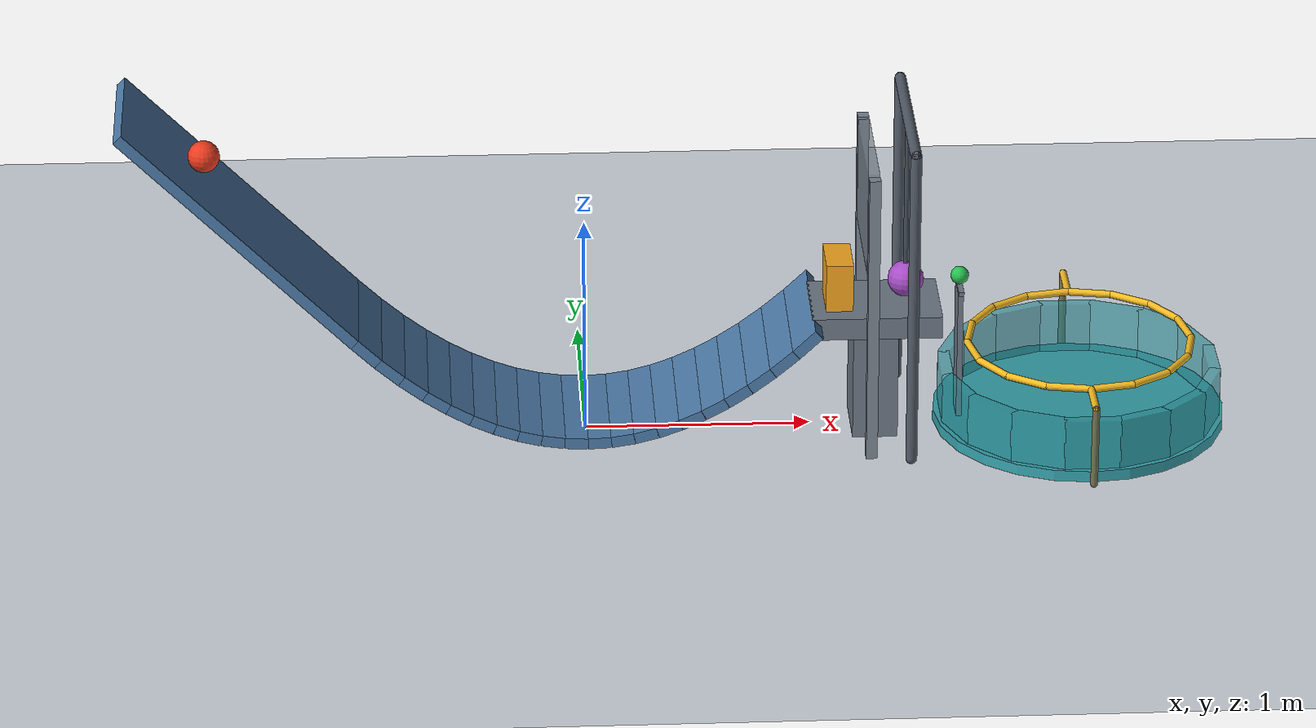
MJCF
<mujoco model="halfpipe_chain_reaction_revised">
  <compiler angle="degree" autolimits="true"/>
  <option timestep="0.002" gravity="0 0 -9.81" integrator="implicitfast" solver="Newton" iterations="100" tolerance="1e-10"/>
  <size njmax="2000" nconmax="400"/>
  <visual>
    <headlight ambient="0.45 0.45 0.45" diffuse="0.7 0.7 0.7" specular="0.2 0.2 0.2"/>
    <rgba haze="0.85 0.9 0.95 1"/>
  </visual>

  <worldbody>
    <light name="key_light" pos="0 -3 6" dir="0 0.3 -1" directional="true"/>
    <camera name="overview" pos="4 -7 4" xyaxes="0.868 0.496 0 -0.205 0.358 0.911"/>
    <geom name="floor" type="plane" pos="0 0 0" size="8 5 0.1" friction="0.8 0.01 0.001" rgba="0.82 0.85 0.88 1"/>

    <!-- Ball1 starts 1 m along the ramp above its lower endpoint. -->
    <body name="ramp">
      <geom name="ramp_surface" type="box" pos="-1.517678 0 1.082322" euler="0 45 0" size="0.7082 0.32 0.025" friction="0.7 0.002 0.00005" condim="6" priority="1" solref="0.006 1" rgba="0.30 0.48 0.66 1"/>
    </body>

    <!-- Faceted approximation of the curved U-shaped track. -->
    <body name="halfpipe">
      <geom name="halfpipe_01" type="box" pos="-0.967219 0 0.534375" euler="0 43.531 0" size="0.069965 0.32 0.025" friction="0.7 0.002 0.00005" condim="6" priority="1" solref="0.006 1" rgba="0.30 0.48 0.66 1"/>
      <geom name="halfpipe_02" type="box" pos="-0.866192 0 0.443452" euler="0 40.365 0" size="0.066622 0.32 0.025" friction="0.7 0.002 0.00005" condim="6" priority="1" solref="0.006 1" rgba="0.30 0.48 0.66 1"/>
      <geom name="halfpipe_03" type="box" pos="-0.765000 0 0.362500" euler="0 36.870 0" size="0.063500 0.32 0.025" friction="0.7 0.002 0.00005" condim="6" priority="1" solref="0.006 1" rgba="0.30 0.48 0.66 1"/>
      <geom name="halfpipe_04" type="box" pos="-0.663625 0 0.291539" euler="0 33.024 0" size="0.060634 0.32 0.025" friction="0.7 0.002 0.00005" condim="6" priority="1" solref="0.006 1" rgba="0.30 0.48 0.66 1"/>
      <geom name="halfpipe_05" type="box" pos="-0.562048 0 0.230595" euler="0 28.811 0" size="0.058064 0.32 0.025" friction="0.7 0.002 0.00005" condim="6" priority="1" solref="0.006 1" rgba="0.30 0.48 0.66 1"/>
      <geom name="halfpipe_06" type="box" pos="-0.460259 0 0.179702" euler="0 24.228 0" size="0.055829 0.32 0.025" friction="0.7 0.002 0.00005" condim="6" priority="1" solref="0.006 1" rgba="0.30 0.48 0.66 1"/>
      <geom name="halfpipe_07" type="box" pos="-0.358259 0 0.138904" euler="0 19.290 0" size="0.053974 0.32 0.025" friction="0.7 0.002 0.00005" condim="6" priority="1" solref="0.006 1" rgba="0.30 0.48 0.66 1"/>
      <geom name="halfpipe_08" type="box" pos="-0.256063 0 0.108246" euler="0 14.036 0" size="0.052539 0.32 0.025" friction="0.7 0.002 0.00005" condim="6" priority="1" solref="0.006 1" rgba="0.30 0.48 0.66 1"/>
      <geom name="halfpipe_09" type="box" pos="-0.153709 0 0.087777" euler="0 8.531 0" size="0.051559 0.32 0.025" friction="0.7 0.002 0.00005" condim="6" priority="1" solref="0.006 1" rgba="0.30 0.48 0.66 1"/>
      <geom name="halfpipe_10" type="box" pos="-0.051248 0 0.077531" euler="0 2.862 0" size="0.051062 0.32 0.025" friction="0.7 0.002 0.00005" condim="6" priority="1" solref="0.006 1" rgba="0.30 0.48 0.66 1"/>
      <geom name="halfpipe_11" type="box" pos="0.051248 0 0.077531" euler="0 -2.862 0" size="0.051062 0.32 0.025" friction="0.7 0.002 0.00005" condim="6" priority="1" solref="0.006 1" rgba="0.30 0.48 0.66 1"/>
      <geom name="halfpipe_12" type="box" pos="0.153709 0 0.087777" euler="0 -8.531 0" size="0.051559 0.32 0.025" friction="0.7 0.002 0.00005" condim="6" priority="1" solref="0.006 1" rgba="0.30 0.48 0.66 1"/>
      <geom name="halfpipe_13" type="box" pos="0.256063 0 0.108246" euler="0 -14.036 0" size="0.052539 0.32 0.025" friction="0.7 0.002 0.00005" condim="6" priority="1" solref="0.006 1" rgba="0.30 0.48 0.66 1"/>
      <geom name="halfpipe_14" type="box" pos="0.358259 0 0.138904" euler="0 -19.290 0" size="0.053974 0.32 0.025" friction="0.7 0.002 0.00005" condim="6" priority="1" solref="0.006 1" rgba="0.30 0.48 0.66 1"/>
      <geom name="halfpipe_15" type="box" pos="0.460259 0 0.179702" euler="0 -24.228 0" size="0.055829 0.32 0.025" friction="0.7 0.002 0.00005" condim="6" priority="1" solref="0.006 1" rgba="0.30 0.48 0.66 1"/>
      <geom name="halfpipe_16" type="box" pos="0.562048 0 0.230595" euler="0 -28.811 0" size="0.058064 0.32 0.025" friction="0.7 0.002 0.00005" condim="6" priority="1" solref="0.006 1" rgba="0.30 0.48 0.66 1"/>
      <geom name="halfpipe_17" type="box" pos="0.663625 0 0.291539" euler="0 -33.024 0" size="0.060634 0.32 0.025" friction="0.7 0.002 0.00005" condim="6" priority="1" solref="0.006 1" rgba="0.30 0.48 0.66 1"/>
      <geom name="halfpipe_18" type="box" pos="0.765000 0 0.362500" euler="0 -36.870 0" size="0.063500 0.32 0.025" friction="0.7 0.002 0.00005" condim="6" priority="1" solref="0.006 1" rgba="0.30 0.48 0.66 1"/>
      <geom name="halfpipe_19" type="box" pos="0.866192 0 0.443452" euler="0 -40.365 0" size="0.066622 0.32 0.025" friction="0.7 0.002 0.00005" condim="6" priority="1" solref="0.006 1" rgba="0.30 0.48 0.66 1"/>
      <geom name="halfpipe_20" type="box" pos="0.967219 0 0.534375" euler="0 -43.531 0" size="0.069965 0.32 0.025" friction="0.7 0.002 0.00005" condim="6" priority="1" solref="0.006 1" rgba="0.30 0.48 0.66 1"/>
    </body>

    <body name="ball1" pos="-1.657609 0 1.356604">
      <freejoint name="ball1_free"/>
      <geom name="ball1_sphere" type="sphere" size="0.07" mass="0.4" friction="0.7 0.002 0.00005" condim="6" solref="0.006 1" rgba="0.92 0.23 0.12 1"/>
    </body>

    <body name="block_support">
      <geom name="block_support_deck" type="box" pos="1.2825 0 0.55" size="0.2875 0.20 0.05" friction="0.07 0.002 0.0001" priority="5" solref="0.006 1" rgba="0.43 0.47 0.52 1"/>
      <geom name="block_support_leg" type="box" pos="1.28 0 0.25" size="0.10 0.16 0.25" rgba="0.43 0.47 0.52 1"/>
    </body>

    <!-- Align the block's center more closely with ball1's impact height. -->
    <body name="block" pos="1.12 0 0.71">
      <freejoint name="block_free"/>
      <geom name="block_striker" type="box" size="0.06 0.12 0.11" mass="0.14" friction="0.07 0.002 0.0001" condim="4" priority="2" solref="0.006 0.2" rgba="0.96 0.65 0.12 1"/>
    </body>

    <!-- The block passes beneath this stop; the rising ball1 hits it. -->
    <body name="ball1_backstop">
      <geom name="ball1_backstop_wall" type="box" pos="1.25 0 1.10" size="0.025 0.30 0.24" friction="0.8 0.01 0.001" priority="5" solref="0.006 1" rgba="0.48 0.52 0.57 0.7"/>
      <geom name="ball1_backstop_left_post" type="box" pos="1.25 -0.35 0.67" size="0.025 0.025 0.67" rgba="0.48 0.52 0.57 1"/>
      <geom name="ball1_backstop_right_post" type="box" pos="1.25 0.35 0.67" size="0.025 0.025 0.67" rgba="0.48 0.52 0.57 1"/>
    </body>

    <body name="pendulum_support">
      <geom name="pendulum_support_left" type="capsule" fromto="1.42 -0.43 0.025 1.42 -0.43 1.48" size="0.025" rgba="0.32 0.35 0.40 1"/>
      <geom name="pendulum_support_right" type="capsule" fromto="1.42 0.43 0.025 1.42 0.43 1.48" size="0.025" rgba="0.32 0.35 0.40 1"/>
      <geom name="pendulum_support_axle" type="capsule" fromto="1.42 -0.43 1.48 1.42 0.43 1.48" size="0.025" contype="0" conaffinity="0" rgba="0.32 0.35 0.40 1"/>
    </body>

    <body name="pendulum" pos="1.42 0 1.48">
      <joint name="pendulum_hinge" type="hinge" axis="0 1 0" range="-75 8" damping="0.001" armature="0.00001"/>
      <geom name="pendulum_rod" type="capsule" fromto="0 0 -0.035 0 0 -0.72" size="0.012" mass="0.004" contype="0" conaffinity="0" rgba="0.25 0.29 0.34 1"/>
      <geom name="pendulum_bob" type="sphere" pos="0 0 -0.78" size="0.08" mass="0.035" friction="0.08 0.002 0.0001" priority="3" solref="0.006 0.25" rgba="0.65 0.30 0.78 1"/>
    </body>

    <!-- Contact with ball2 now occurs near nine degrees of outgoing swing. -->
    <body name="ball2_stand">
      <geom name="ball2_stand_top" type="box" pos="1.66 0 0.66" size="0.012 0.10 0.01" friction="0.12 0.002 0.0001" priority="5" solref="0.006 1" rgba="0.43 0.47 0.52 1"/>
      <geom name="ball2_stand_column" type="box" pos="1.66 0 0.325" size="0.012 0.07 0.325" rgba="0.43 0.47 0.52 1"/>
    </body>

    <body name="ball2" pos="1.66 0 0.71">
      <freejoint name="ball2_free"/>
      <geom name="ball2_sphere" type="sphere" size="0.04" mass="0.01" friction="0.8 0.01 0.001" condim="6" solref="0.006 1" rgba="0.15 0.75 0.32 1"/>
    </body>

    <body name="hoop" pos="2.2 0 0.38">
      <geom name="hoop_01" type="capsule" fromto="0.500000 0 0 0.461940 0.191342 0" size="0.016" priority="5" solref="0.006 1" rgba="0.96 0.73 0.12 1"/>
      <geom name="hoop_02" type="capsule" fromto="0.461940 0.191342 0 0.353553 0.353553 0" size="0.016" priority="5" solref="0.006 1" rgba="0.96 0.73 0.12 1"/>
      <geom name="hoop_03" type="capsule" fromto="0.353553 0.353553 0 0.191342 0.461940 0" size="0.016" priority="5" solref="0.006 1" rgba="0.96 0.73 0.12 1"/>
      <geom name="hoop_04" type="capsule" fromto="0.191342 0.461940 0 0 0.500000 0" size="0.016" priority="5" solref="0.006 1" rgba="0.96 0.73 0.12 1"/>
      <geom name="hoop_05" type="capsule" fromto="0 0.500000 0 -0.191342 0.461940 0" size="0.016" priority="5" solref="0.006 1" rgba="0.96 0.73 0.12 1"/>
      <geom name="hoop_06" type="capsule" fromto="-0.191342 0.461940 0 -0.353553 0.353553 0" size="0.016" priority="5" solref="0.006 1" rgba="0.96 0.73 0.12 1"/>
      <geom name="hoop_07" type="capsule" fromto="-0.353553 0.353553 0 -0.461940 0.191342 0" size="0.016" priority="5" solref="0.006 1" rgba="0.96 0.73 0.12 1"/>
      <geom name="hoop_08" type="capsule" fromto="-0.461940 0.191342 0 -0.500000 0 0" size="0.016" priority="5" solref="0.006 1" rgba="0.96 0.73 0.12 1"/>
      <geom name="hoop_09" type="capsule" fromto="-0.500000 0 0 -0.461940 -0.191342 0" size="0.016" priority="5" solref="0.006 1" rgba="0.96 0.73 0.12 1"/>
      <geom name="hoop_10" type="capsule" fromto="-0.461940 -0.191342 0 -0.353553 -0.353553 0" size="0.016" priority="5" solref="0.006 1" rgba="0.96 0.73 0.12 1"/>
      <geom name="hoop_11" type="capsule" fromto="-0.353553 -0.353553 0 -0.191342 -0.461940 0" size="0.016" priority="5" solref="0.006 1" rgba="0.96 0.73 0.12 1"/>
      <geom name="hoop_12" type="capsule" fromto="-0.191342 -0.461940 0 0 -0.500000 0" size="0.016" priority="5" solref="0.006 1" rgba="0.96 0.73 0.12 1"/>
      <geom name="hoop_13" type="capsule" fromto="0 -0.500000 0 0.191342 -0.461940 0" size="0.016" priority="5" solref="0.006 1" rgba="0.96 0.73 0.12 1"/>
      <geom name="hoop_14" type="capsule" fromto="0.191342 -0.461940 0 0.353553 -0.353553 0" size="0.016" priority="5" solref="0.006 1" rgba="0.96 0.73 0.12 1"/>
      <geom name="hoop_15" type="capsule" fromto="0.353553 -0.353553 0 0.461940 -0.191342 0" size="0.016" priority="5" solref="0.006 1" rgba="0.96 0.73 0.12 1"/>
      <geom name="hoop_16" type="capsule" fromto="0.461940 -0.191342 0 0.500000 0 0" size="0.016" priority="5" solref="0.006 1" rgba="0.96 0.73 0.12 1"/>
      <geom name="hoop_left_post" type="capsule" fromto="0 -0.70 -0.364 0 -0.70 0" size="0.016" rgba="0.45 0.43 0.30 1"/>
      <geom name="hoop_right_post" type="capsule" fromto="0 0.70 -0.364 0 0.70 0" size="0.016" rgba="0.45 0.43 0.30 1"/>
      <geom name="hoop_left_brace" type="capsule" fromto="0 -0.70 0 0 -0.50 0" size="0.016" rgba="0.96 0.73 0.12 1"/>
      <geom name="hoop_right_brace" type="capsule" fromto="0 0.50 0 0 0.70 0" size="0.016" rgba="0.96 0.73 0.12 1"/>
    </body>

    <body name="cup" pos="2.2 0 0">
      <geom name="cup_bottom" type="cylinder" pos="0 0 0.025" size="0.65 0.025" friction="1.2 0.02 0.01" condim="6" priority="5" solref="0.006 1" rgba="0.20 0.62 0.66 1"/>
      <geom name="cup_wall_01" type="box" pos="0.595000 0 0.165" euler="0 0 0" size="0.025 0.125 0.115" friction="1.2 0.02 0.01" condim="6" priority="5" solref="0.006 1" rgba="0.20 0.62 0.66 0.65"/>
      <geom name="cup_wall_02" type="box" pos="0.549708 0.227697 0.165" euler="0 0 22.5" size="0.025 0.125 0.115" friction="1.2 0.02 0.01" condim="6" priority="5" solref="0.006 1" rgba="0.20 0.62 0.66 0.65"/>
      <geom name="cup_wall_03" type="box" pos="0.420729 0.420729 0.165" euler="0 0 45" size="0.025 0.125 0.115" friction="1.2 0.02 0.01" condim="6" priority="5" solref="0.006 1" rgba="0.20 0.62 0.66 0.65"/>
      <geom name="cup_wall_04" type="box" pos="0.227697 0.549708 0.165" euler="0 0 67.5" size="0.025 0.125 0.115" friction="1.2 0.02 0.01" condim="6" priority="5" solref="0.006 1" rgba="0.20 0.62 0.66 0.65"/>
      <geom name="cup_wall_05" type="box" pos="0 0.595000 0.165" euler="0 0 90" size="0.025 0.125 0.115" friction="1.2 0.02 0.01" condim="6" priority="5" solref="0.006 1" rgba="0.20 0.62 0.66 0.65"/>
      <geom name="cup_wall_06" type="box" pos="-0.227697 0.549708 0.165" euler="0 0 112.5" size="0.025 0.125 0.115" friction="1.2 0.02 0.01" condim="6" priority="5" solref="0.006 1" rgba="0.20 0.62 0.66 0.65"/>
      <geom name="cup_wall_07" type="box" pos="-0.420729 0.420729 0.165" euler="0 0 135" size="0.025 0.125 0.115" friction="1.2 0.02 0.01" condim="6" priority="5" solref="0.006 1" rgba="0.20 0.62 0.66 0.65"/>
      <geom name="cup_wall_08" type="box" pos="-0.549708 0.227697 0.165" euler="0 0 157.5" size="0.025 0.125 0.115" friction="1.2 0.02 0.01" condim="6" priority="5" solref="0.006 1" rgba="0.20 0.62 0.66 0.65"/>
      <geom name="cup_wall_09" type="box" pos="-0.595000 0 0.165" euler="0 0 180" size="0.025 0.125 0.115" friction="1.2 0.02 0.01" condim="6" priority="5" solref="0.006 1" rgba="0.20 0.62 0.66 0.65"/>
      <geom name="cup_wall_10" type="box" pos="-0.549708 -0.227697 0.165" euler="0 0 202.5" size="0.025 0.125 0.115" friction="1.2 0.02 0.01" condim="6" priority="5" solref="0.006 1" rgba="0.20 0.62 0.66 0.65"/>
      <geom name="cup_wall_11" type="box" pos="-0.420729 -0.420729 0.165" euler="0 0 225" size="0.025 0.125 0.115" friction="1.2 0.02 0.01" condim="6" priority="5" solref="0.006 1" rgba="0.20 0.62 0.66 0.65"/>
      <geom name="cup_wall_12" type="box" pos="-0.227697 -0.549708 0.165" euler="0 0 247.5" size="0.025 0.125 0.115" friction="1.2 0.02 0.01" condim="6" priority="5" solref="0.006 1" rgba="0.20 0.62 0.66 0.65"/>
      <geom name="cup_wall_13" type="box" pos="0 -0.595000 0.165" euler="0 0 270" size="0.025 0.125 0.115" friction="1.2 0.02 0.01" condim="6" priority="5" solref="0.006 1" rgba="0.20 0.62 0.66 0.65"/>
      <geom name="cup_wall_14" type="box" pos="0.227697 -0.549708 0.165" euler="0 0 292.5" size="0.025 0.125 0.115" friction="1.2 0.02 0.01" condim="6" priority="5" solref="0.006 1" rgba="0.20 0.62 0.66 0.65"/>
      <geom name="cup_wall_15" type="box" pos="0.420729 -0.420729 0.165" euler="0 0 315" size="0.025 0.125 0.115" friction="1.2 0.02 0.01" condim="6" priority="5" solref="0.006 1" rgba="0.20 0.62 0.66 0.65"/>
      <geom name="cup_wall_16" type="box" pos="0.549708 -0.227697 0.165" euler="0 0 337.5" size="0.025 0.125 0.115" friction="1.2 0.02 0.01" condim="6" priority="5" solref="0.006 1" rgba="0.20 0.62 0.66 0.65"/>
    </body>
  </worldbody>

  <!-- Prevent the approach ball from directly driving downstream targets. -->
  <contact>
    <exclude name="exclude_ball1_pendulum" body1="ball1" body2="pendulum"/>
    <exclude name="exclude_ball1_ball2" body1="ball1" body2="ball2"/>
  </contact>

  <keyframe>
    <key name="start" time="0" qpos="-1.657609 0 1.356604 1 0 0 0 1.12 0 0.71 1 0 0 0 0 1.66 0 0.71 1 0 0 0"/>
  </keyframe>
</mujoco>
